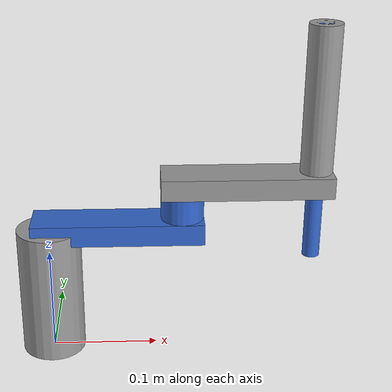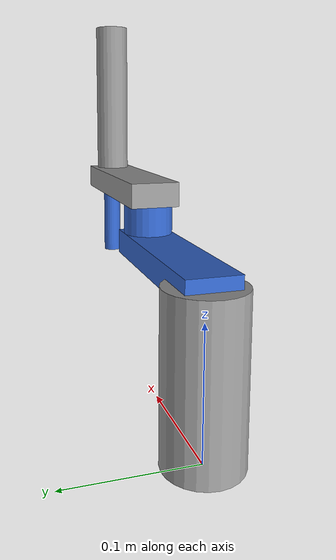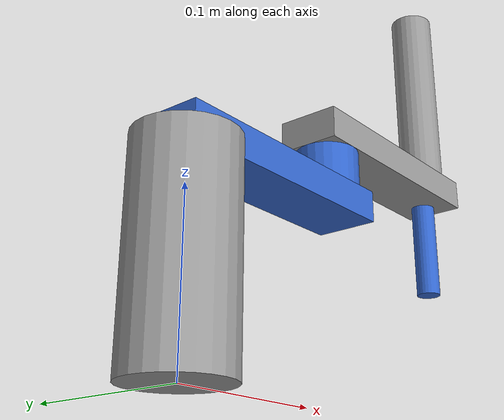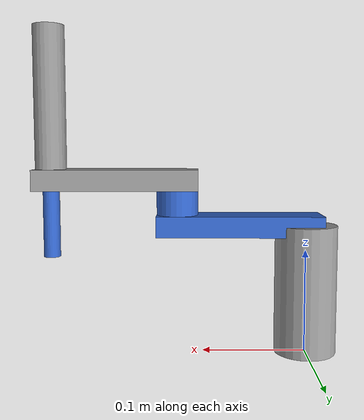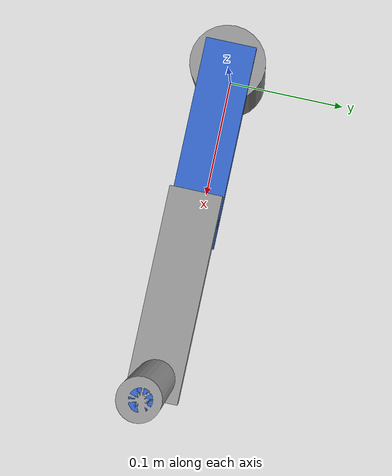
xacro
<?xml version="1.0"?>
<!-- SCARA RRP. Unidades de ROS: metros y radianes. -->
<robot name="scara" xmlns:xacro="http://www.ros.org/wiki/xacro">

  <!-- Medidas del robot, sacadas de tu tabla DH (mm -> m) -->
  <xacro:property name="h1"    value="0.12525"/>  <!-- S1: base -> eje de R1 -->
  <xacro:property name="l1"    value="0.12505"/>  <!-- a12: eje R1 -> eje R2 -->
  <xacro:property name="h2"    value="0.044"/>    <!-- S2: R2 está 44 mm más arriba que R1 -->
  <xacro:property name="l2"    value="0.12255"/>  <!-- a23: eje R2 -> eje del prismático -->
  <xacro:property name="h3"    value="0.14675"/>  <!-- -S3: la cabeza del prismático está 146.75 mm sobre R2 -->
  <xacro:property name="tool"  value="0.222"/>    <!-- S4: de la cabeza a la punta, con el prismático en 0 -->
  <xacro:property name="p_max" value="0.085"/>    <!-- carrera del prismático (85 mm, igual que axis_config.h) -->

  <!-- Límites: los mismos de axis_config.h -->
  <xacro:property name="r_min" value="-1.57"/>
  <xacro:property name="r_max" value="1.57"/>

  <!-- Material solo para que se vea en RViz -->
  <material name="gris"><color rgba="0.6 0.6 0.6 1"/></material>
  <material name="azul"><color rgba="0.2 0.4 0.8 1"/></material>

  <!-- ===== Eslabones (solo la parte visual; lo que importa son los origin de las juntas) ===== -->
  <link name="base_link">
    <visual>
      <origin xyz="0 0 ${h1/2}"/>
      <geometry><cylinder radius="0.03" length="${h1}"/></geometry>
      <material name="gris"/>
    </visual>
  </link>

  <link name="link_1">
    <visual>
      <origin xyz="${l1/2+0.0025} 0 0"/>
      <geometry><box size="${l1+0.035} 0.04 0.02"/></geometry>
      <material name="azul"/>
    </visual>
    <visual>   <!-- poste que sube los 44 mm hasta R2 -->
      <origin xyz="${l1} 0 ${h2/2}"/>
      <geometry><cylinder radius="0.02" length="${h2}"/></geometry>
      <material name="azul"/>
    </visual>
  </link>

  <link name="link_2">
    <visual>
      <origin xyz="${l2/2-0.0025} 0 0"/>
      <geometry><box size="${l2+0.035} 0.04 0.02"/></geometry>
      <material name="gris"/>
    </visual>
    <visual>   <!-- columna hasta la cabeza del prismático -->
      <origin xyz="${l2} 0 ${h3/2}"/>
      <geometry><cylinder radius="0.015" length="${h3}"/></geometry>
      <material name="gris"/>
    </visual>
  </link>

  <link name="link_p">   <!-- la varilla que baja y sube -->
    <visual>
      <origin xyz="0 0 ${-tool/2}"/>
      <geometry><cylinder radius="0.008" length="${tool}"/></geometry>
      <material name="azul"/>
    </visual>
  </link>

  <link name="tool0"/>   <!-- la punta: este es el punto que usará la IK -->

  <!-- ===== Juntas (los nombres son los que usará todo ROS) ===== -->
  <joint name="joint_r1" type="revolute">
    <parent link="base_link"/>
    <child link="link_1"/>
    <origin xyz="0 0 ${h1}"/>
    <axis xyz="0 0 1"/>
    <limit lower="${r_min}" upper="${r_max}" effort="10" velocity="1.0"/>
  </joint>

  <joint name="joint_r2" type="revolute">
    <parent link="link_1"/>
    <child link="link_2"/>
    <origin xyz="${l1} 0 ${h2}"/>
    <axis xyz="0 0 1"/>
    <limit lower="${r_min}" upper="${r_max}" effort="10" velocity="1.0"/>
  </joint>

  <!-- El origen es la cabeza (z = 316 mm). Supuesto: p positivo = la punta BAJA (axis 0 0 -1).
       Si en tu robot es al revés, cambia el axis a "0 0 1". -->
  <joint name="joint_p" type="prismatic">
    <parent link="link_2"/>
    <child link="link_p"/>
    <origin xyz="${l2} 0.001 ${h3}"/>
    <axis xyz="0 0 -1"/>
    <limit lower="0.0" upper="${p_max}" effort="50" velocity="0.01"/>
  </joint>

  <joint name="joint_tool" type="fixed">
    <parent link="link_p"/>
    <child link="tool0"/>
    <origin xyz="0 0 ${-tool}"/>
  </joint>

</robot>
